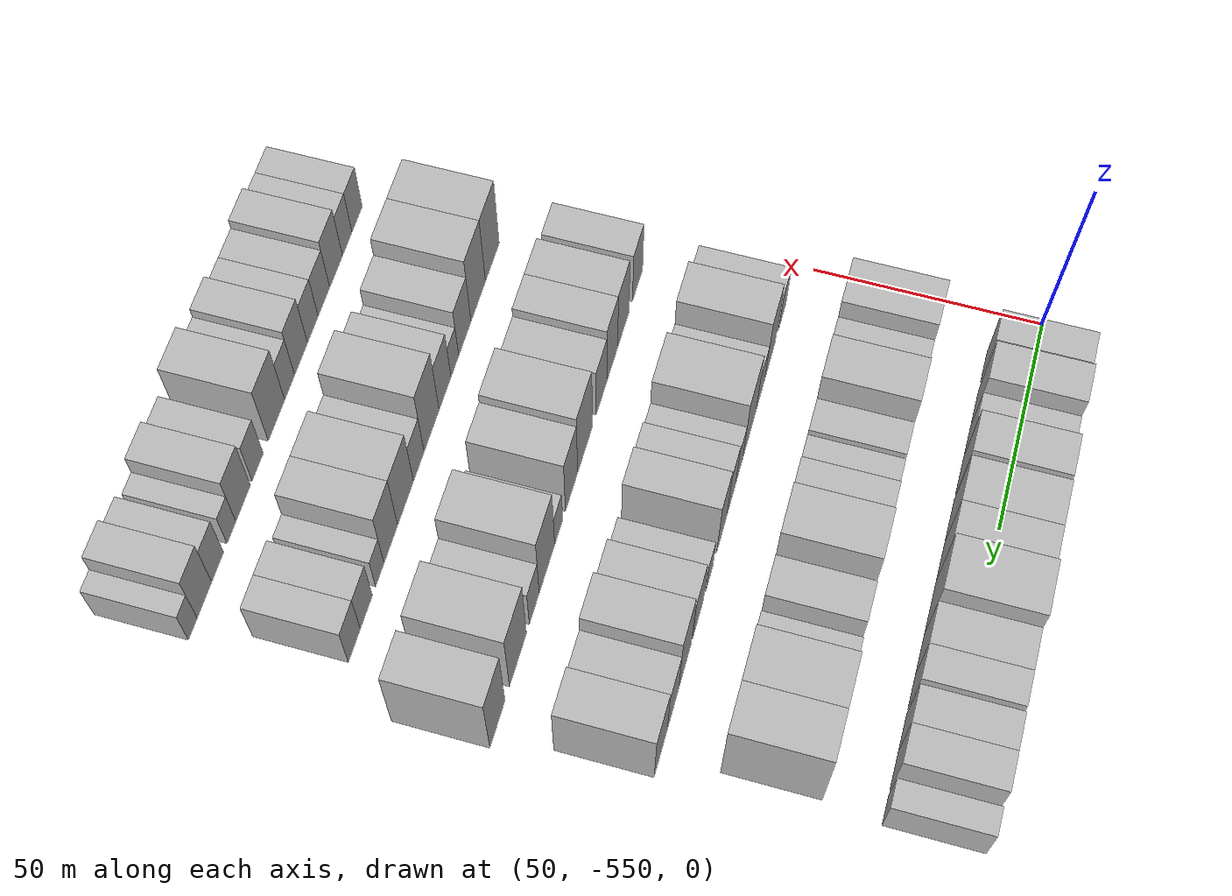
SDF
<sdf version="1.6">
 <world name="default">
  <model name="building_1">
   <static>1</static>
   <pose>50.0000 -536.3097 0 0.000000 0.000000 0.000000</pose>
   <link name="link">
    <pose>0 0 9.00 0 0 0</pose>
    <collision name="collision"><geometry><box><size>20.0000 7.3805 18.0000</size></box></geometry></collision>
    <visual name="visual">
     <cast_shadows>0</cast_shadows>
     <geometry><box><size>20.0000 7.3805 18.0000</size></box></geometry>
     <material>
      <script>
       <uri>model://HANNAS_wall/materials/scripts</uri>
       <uri>model://HANNAS_wall/materials/textures</uri>
       <name>vrc/HANNAS_wall</name>
      </script>
     </material>
    </visual>
   </link>
  </model>
  <model name="building_2">
   <static>1</static>
   <pose>50.0000 -526.1825 0 0.000000 0.000000 0.000000</pose>
   <link name="link">
    <pose>0 0 10.50 0 0 0</pose>
    <collision name="collision"><geometry><box><size>20.0000 8.8739 21.0000</size></box></geometry></collision>
    <visual name="visual">
     <cast_shadows>0</cast_shadows>
     <geometry><box><size>20.0000 8.8739 21.0000</size></box></geometry>
     <material>
      <script>
       <uri>model://HANNAS_wall/materials/scripts</uri>
       <uri>model://HANNAS_wall/materials/textures</uri>
       <name>vrc/HANNAS_wall</name>
      </script>
     </material>
    </visual>
   </link>
  </model>
  <model name="building_3">
   <static>1</static>
   <pose>50.0000 -518.0560 0 0.000000 0.000000 0.000000</pose>
   <link name="link">
    <pose>0 0 7.50 0 0 0</pose>
    <collision name="collision"><geometry><box><size>20.0000 7.3791 15.0000</size></box></geometry></collision>
    <visual name="visual">
     <cast_shadows>0</cast_shadows>
     <geometry><box><size>20.0000 7.3791 15.0000</size></box></geometry>
     <material>
      <script>
       <uri>model://HANNAS_wall/materials/scripts</uri>
       <uri>model://HANNAS_wall/materials/textures</uri>
       <name>vrc/HANNAS_wall</name>
      </script>
     </material>
    </visual>
   </link>
  </model>
  <model name="building_4">
   <static>1</static>
   <pose>50.0000 -509.7047 0 0.000000 0.000000 0.000000</pose>
   <link name="link">
    <pose>0 0 10.50 0 0 0</pose>
    <collision name="collision"><geometry><box><size>20.0000 9.3236 21.0000</size></box></geometry></collision>
    <visual name="visual">
     <cast_shadows>0</cast_shadows>
     <geometry><box><size>20.0000 9.3236 21.0000</size></box></geometry>
     <material>
      <script>
       <uri>model://HANNAS_wall/materials/scripts</uri>
       <uri>model://HANNAS_wall/materials/textures</uri>
       <name>vrc/HANNAS_wall</name>
      </script>
     </material>
    </visual>
   </link>
  </model>
  <model name="building_5">
   <static>1</static>
   <pose>50.0000 -499.0533 0 0.000000 0.000000 0.000000</pose>
   <link name="link">
    <pose>0 0 10.50 0 0 0</pose>
    <collision name="collision"><geometry><box><size>20.0000 9.9792 21.0000</size></box></geometry></collision>
    <visual name="visual">
     <cast_shadows>0</cast_shadows>
     <geometry><box><size>20.0000 9.9792 21.0000</size></box></geometry>
     <material>
      <script>
       <uri>model://HANNAS_wall/materials/scripts</uri>
       <uri>model://HANNAS_wall/materials/textures</uri>
       <name>vrc/HANNAS_wall</name>
      </script>
     </material>
    </visual>
   </link>
  </model>
  <model name="building_6">
   <static>1</static>
   <pose>50.0000 -489.7183 0 0.000000 0.000000 0.000000</pose>
   <link name="link">
    <pose>0 0 10.50 0 0 0</pose>
    <collision name="collision"><geometry><box><size>20.0000 8.6908 21.0000</size></box></geometry></collision>
    <visual name="visual">
     <cast_shadows>0</cast_shadows>
     <geometry><box><size>20.0000 8.6908 21.0000</size></box></geometry>
     <material>
      <script>
       <uri>model://HANNAS_wall/materials/scripts</uri>
       <uri>model://HANNAS_wall/materials/textures</uri>
       <name>vrc/HANNAS_wall</name>
      </script>
     </material>
    </visual>
   </link>
  </model>
  <model name="building_7">
   <static>1</static>
   <pose>50.0000 -479.4428 0 0.000000 0.000000 0.000000</pose>
   <link name="link">
    <pose>0 0 12.00 0 0 0</pose>
    <collision name="collision"><geometry><box><size>20.0000 11.8601 24.0000</size></box></geometry></collision>
    <visual name="visual">
     <cast_shadows>0</cast_shadows>
     <geometry><box><size>20.0000 11.8601 24.0000</size></box></geometry>
     <material>
      <script>
       <uri>model://HANNAS_wall/materials/scripts</uri>
       <uri>model://HANNAS_wall/materials/textures</uri>
       <name>vrc/HANNAS_wall</name>
      </script>
     </material>
    </visual>
   </link>
  </model>
  <model name="building_8">
   <static>1</static>
   <pose>50.0000 -469.0990 0 0.000000 0.000000 0.000000</pose>
   <link name="link">
    <pose>0 0 9.00 0 0 0</pose>
    <collision name="collision"><geometry><box><size>20.0000 8.8274 18.0000</size></box></geometry></collision>
    <visual name="visual">
     <cast_shadows>0</cast_shadows>
     <geometry><box><size>20.0000 8.8274 18.0000</size></box></geometry>
     <material>
      <script>
       <uri>model://HANNAS_wall/materials/scripts</uri>
       <uri>model://HANNAS_wall/materials/textures</uri>
       <name>vrc/HANNAS_wall</name>
      </script>
     </material>
    </visual>
   </link>
  </model>
  <model name="building_9">
   <static>1</static>
   <pose>50.0000 -460.9880 0 0.000000 0.000000 0.000000</pose>
   <link name="link">
    <pose>0 0 9.00 0 0 0</pose>
    <collision name="collision"><geometry><box><size>20.0000 7.3945 18.0000</size></box></geometry></collision>
    <visual name="visual">
     <cast_shadows>0</cast_shadows>
     <geometry><box><size>20.0000 7.3945 18.0000</size></box></geometry>
     <material>
      <script>
       <uri>model://HANNAS_wall/materials/scripts</uri>
       <uri>model://HANNAS_wall/materials/textures</uri>
       <name>vrc/HANNAS_wall</name>
      </script>
     </material>
    </visual>
   </link>
  </model>
  <model name="building_10">
   <static>1</static>
   <pose>50.0000 -452.3963 0 0.000000 0.000000 0.000000</pose>
   <link name="link">
    <pose>0 0 9.00 0 0 0</pose>
    <collision name="collision"><geometry><box><size>20.0000 7.7890 18.0000</size></box></geometry></collision>
    <visual name="visual">
     <cast_shadows>0</cast_shadows>
     <geometry><box><size>20.0000 7.7890 18.0000</size></box></geometry>
     <material>
      <script>
       <uri>model://HANNAS_wall/materials/scripts</uri>
       <uri>model://HANNAS_wall/materials/textures</uri>
       <name>vrc/HANNAS_wall</name>
      </script>
     </material>
    </visual>
   </link>
  </model>
  <model name="building_11">
   <static>1</static>
   <pose>50.0000 -444.4379 0 0.000000 0.000000 0.000000</pose>
   <link name="link">
    <pose>0 0 9.00 0 0 0</pose>
    <collision name="collision"><geometry><box><size>20.0000 8.1278 18.0000</size></box></geometry></collision>
    <visual name="visual">
     <cast_shadows>0</cast_shadows>
     <geometry><box><size>20.0000 8.1278 18.0000</size></box></geometry>
     <material>
      <script>
       <uri>model://HANNAS_wall/materials/scripts</uri>
       <uri>model://HANNAS_wall/materials/textures</uri>
       <name>vrc/HANNAS_wall</name>
      </script>
     </material>
    </visual>
   </link>
  </model>
  <model name="building_12">
   <static>1</static>
   <pose>50.0000 -436.4097 0 0.000000 0.000000 0.000000</pose>
   <link name="link">
    <pose>0 0 6.00 0 0 0</pose>
    <collision name="collision"><geometry><box><size>20.0000 5.9287 12.0000</size></box></geometry></collision>
    <visual name="visual">
     <cast_shadows>0</cast_shadows>
     <geometry><box><size>20.0000 5.9287 12.0000</size></box></geometry>
     <material>
      <script>
       <uri>model://HANNAS_wall/materials/scripts</uri>
       <uri>model://HANNAS_wall/materials/textures</uri>
       <name>vrc/HANNAS_wall</name>
      </script>
     </material>
    </visual>
   </link>
  </model>
  <model name="building_117">
   <static>1</static>
   <pose>82.0000 -534.5952 0 0.000000 0.000000 0.000000</pose>
   <link name="link">
    <pose>0 0 12.00 0 0 0</pose>
    <collision name="collision"><geometry><box><size>20.0000 10.8096 24.0000</size></box></geometry></collision>
    <visual name="visual">
     <cast_shadows>0</cast_shadows>
     <geometry><box><size>20.0000 10.8096 24.0000</size></box></geometry>
     <material>
      <script>
       <uri>model://HANNAS_wall/materials/scripts</uri>
       <uri>model://HANNAS_wall/materials/textures</uri>
       <name>vrc/HANNAS_wall</name>
      </script>
     </material>
    </visual>
   </link>
  </model>
  <model name="building_118">
   <static>1</static>
   <pose>82.0000 -525.2677 0 0.000000 0.000000 0.000000</pose>
   <link name="link">
    <pose>0 0 9.00 0 0 0</pose>
    <collision name="collision"><geometry><box><size>20.0000 7.8455 18.0000</size></box></geometry></collision>
    <visual name="visual">
     <cast_shadows>0</cast_shadows>
     <geometry><box><size>20.0000 7.8455 18.0000</size></box></geometry>
     <material>
      <script>
       <uri>model://HANNAS_wall/materials/scripts</uri>
       <uri>model://HANNAS_wall/materials/textures</uri>
       <name>vrc/HANNAS_wall</name>
      </script>
     </material>
    </visual>
   </link>
  </model>
  <model name="building_119">
   <static>1</static>
   <pose>82.0000 -516.3274 0 0.000000 0.000000 0.000000</pose>
   <link name="link">
    <pose>0 0 12.00 0 0 0</pose>
    <collision name="collision"><geometry><box><size>20.0000 10.0350 24.0000</size></box></geometry></collision>
    <visual name="visual">
     <cast_shadows>0</cast_shadows>
     <geometry><box><size>20.0000 10.0350 24.0000</size></box></geometry>
     <material>
      <script>
       <uri>model://HANNAS_wall/materials/scripts</uri>
       <uri>model://HANNAS_wall/materials/textures</uri>
       <name>vrc/HANNAS_wall</name>
      </script>
     </material>
    </visual>
   </link>
  </model>
  <model name="building_120">
   <static>1</static>
   <pose>82.0000 -507.5754 0 0.000000 0.000000 0.000000</pose>
   <link name="link">
    <pose>0 0 7.50 0 0 0</pose>
    <collision name="collision"><geometry><box><size>20.0000 7.4691 15.0000</size></box></geometry></collision>
    <visual name="visual">
     <cast_shadows>0</cast_shadows>
     <geometry><box><size>20.0000 7.4691 15.0000</size></box></geometry>
     <material>
      <script>
       <uri>model://HANNAS_wall/materials/scripts</uri>
       <uri>model://HANNAS_wall/materials/textures</uri>
       <name>vrc/HANNAS_wall</name>
      </script>
     </material>
    </visual>
   </link>
  </model>
  <model name="building_121">
   <static>1</static>
   <pose>82.0000 -499.5413 0 0.000000 0.000000 0.000000</pose>
   <link name="link">
    <pose>0 0 7.50 0 0 0</pose>
    <collision name="collision"><geometry><box><size>20.0000 6.5990 15.0000</size></box></geometry></collision>
    <visual name="visual">
     <cast_shadows>0</cast_shadows>
     <geometry><box><size>20.0000 6.5990 15.0000</size></box></geometry>
     <material>
      <script>
       <uri>model://HANNAS_wall/materials/scripts</uri>
       <uri>model://HANNAS_wall/materials/textures</uri>
       <name>vrc/HANNAS_wall</name>
      </script>
     </material>
    </visual>
   </link>
  </model>
  <model name="building_122">
   <static>1</static>
   <pose>82.0000 -491.8458 0 0.000000 0.000000 0.000000</pose>
   <link name="link">
    <pose>0 0 9.00 0 0 0</pose>
    <collision name="collision"><geometry><box><size>20.0000 8.7920 18.0000</size></box></geometry></collision>
    <visual name="visual">
     <cast_shadows>0</cast_shadows>
     <geometry><box><size>20.0000 8.7920 18.0000</size></box></geometry>
     <material>
      <script>
       <uri>model://HANNAS_wall/materials/scripts</uri>
       <uri>model://HANNAS_wall/materials/textures</uri>
       <name>vrc/HANNAS_wall</name>
      </script>
     </material>
    </visual>
   </link>
  </model>
  <model name="building_123">
   <static>1</static>
   <pose>82.0000 -481.9068 0 0.000000 0.000000 0.000000</pose>
   <link name="link">
    <pose>0 0 12.00 0 0 0</pose>
    <collision name="collision"><geometry><box><size>20.0000 11.0861 24.0000</size></box></geometry></collision>
    <visual name="visual">
     <cast_shadows>0</cast_shadows>
     <geometry><box><size>20.0000 11.0861 24.0000</size></box></geometry>
     <material>
      <script>
       <uri>model://HANNAS_wall/materials/scripts</uri>
       <uri>model://HANNAS_wall/materials/textures</uri>
       <name>vrc/HANNAS_wall</name>
      </script>
     </material>
    </visual>
   </link>
  </model>
  <model name="building_124">
   <static>1</static>
   <pose>82.0000 -470.0114 0 0.000000 0.000000 0.000000</pose>
   <link name="link">
    <pose>0 0 9.00 0 0 0</pose>
    <collision name="collision"><geometry><box><size>20.0000 8.7047 18.0000</size></box></geometry></collision>
    <visual name="visual">
     <cast_shadows>0</cast_shadows>
     <geometry><box><size>20.0000 8.7047 18.0000</size></box></geometry>
     <material>
      <script>
       <uri>model://HANNAS_wall/materials/scripts</uri>
       <uri>model://HANNAS_wall/materials/textures</uri>
       <name>vrc/HANNAS_wall</name>
      </script>
     </material>
    </visual>
   </link>
  </model>
  <model name="building_125">
   <static>1</static>
   <pose>82.0000 -460.4002 0 0.000000 0.000000 0.000000</pose>
   <link name="link">
    <pose>0 0 7.50 0 0 0</pose>
    <collision name="collision"><geometry><box><size>20.0000 6.5177 15.0000</size></box></geometry></collision>
    <visual name="visual">
     <cast_shadows>0</cast_shadows>
     <geometry><box><size>20.0000 6.5177 15.0000</size></box></geometry>
     <material>
      <script>
       <uri>model://HANNAS_wall/materials/scripts</uri>
       <uri>model://HANNAS_wall/materials/textures</uri>
       <name>vrc/HANNAS_wall</name>
      </script>
     </material>
    </visual>
   </link>
  </model>
  <model name="building_126">
   <static>1</static>
   <pose>82.0000 -451.4658 0 0.000000 0.000000 0.000000</pose>
   <link name="link">
    <pose>0 0 12.00 0 0 0</pose>
    <collision name="collision"><geometry><box><size>20.0000 11.3511 24.0000</size></box></geometry></collision>
    <visual name="visual">
     <cast_shadows>0</cast_shadows>
     <geometry><box><size>20.0000 11.3511 24.0000</size></box></geometry>
     <material>
      <script>
       <uri>model://HANNAS_wall/materials/scripts</uri>
       <uri>model://HANNAS_wall/materials/textures</uri>
       <name>vrc/HANNAS_wall</name>
      </script>
     </material>
    </visual>
   </link>
  </model>
  <model name="building_127">
   <static>1</static>
   <pose>82.0000 -440.4803 0 0.000000 0.000000 0.000000</pose>
   <link name="link">
    <pose>0 0 12.00 0 0 0</pose>
    <collision name="collision"><geometry><box><size>20.0000 10.6199 24.0000</size></box></geometry></collision>
    <visual name="visual">
     <cast_shadows>0</cast_shadows>
     <geometry><box><size>20.0000 10.6199 24.0000</size></box></geometry>
     <material>
      <script>
       <uri>model://HANNAS_wall/materials/scripts</uri>
       <uri>model://HANNAS_wall/materials/textures</uri>
       <name>vrc/HANNAS_wall</name>
      </script>
     </material>
    </visual>
   </link>
  </model>
  <model name="building_237">
   <static>1</static>
   <pose>114.0000 -536.5072 0 0.000000 0.000000 0.000000</pose>
   <link name="link">
    <pose>0 0 7.50 0 0 0</pose>
    <collision name="collision"><geometry><box><size>20.0000 6.9856 15.0000</size></box></geometry></collision>
    <visual name="visual">
     <cast_shadows>0</cast_shadows>
     <geometry><box><size>20.0000 6.9856 15.0000</size></box></geometry>
     <material>
      <script>
       <uri>model://HANNAS_wall/materials/scripts</uri>
       <uri>model://HANNAS_wall/materials/textures</uri>
       <name>vrc/HANNAS_wall</name>
      </script>
     </material>
    </visual>
   </link>
  </model>
  <model name="building_238">
   <static>1</static>
   <pose>114.0000 -525.1246 0 0.000000 0.000000 0.000000</pose>
   <link name="link">
    <pose>0 0 12.00 0 0 0</pose>
    <collision name="collision"><geometry><box><size>20.0000 9.7797 24.0000</size></box></geometry></collision>
    <visual name="visual">
     <cast_shadows>0</cast_shadows>
     <geometry><box><size>20.0000 9.7797 24.0000</size></box></geometry>
     <material>
      <script>
       <uri>model://HANNAS_wall/materials/scripts</uri>
       <uri>model://HANNAS_wall/materials/textures</uri>
       <name>vrc/HANNAS_wall</name>
      </script>
     </material>
    </visual>
   </link>
  </model>
  <model name="building_239">
   <static>1</static>
   <pose>114.0000 -516.5042 0 0.000000 0.000000 0.000000</pose>
   <link name="link">
    <pose>0 0 7.50 0 0 0</pose>
    <collision name="collision"><geometry><box><size>20.0000 7.4611 15.0000</size></box></geometry></collision>
    <visual name="visual">
     <cast_shadows>0</cast_shadows>
     <geometry><box><size>20.0000 7.4611 15.0000</size></box></geometry>
     <material>
      <script>
       <uri>model://HANNAS_wall/materials/scripts</uri>
       <uri>model://HANNAS_wall/materials/textures</uri>
       <name>vrc/HANNAS_wall</name>
      </script>
     </material>
    </visual>
   </link>
  </model>
  <model name="building_240">
   <static>1</static>
   <pose>114.0000 -506.9542 0 0.000000 0.000000 0.000000</pose>
   <link name="link">
    <pose>0 0 12.00 0 0 0</pose>
    <collision name="collision"><geometry><box><size>20.0000 11.6388 24.0000</size></box></geometry></collision>
    <visual name="visual">
     <cast_shadows>0</cast_shadows>
     <geometry><box><size>20.0000 11.6388 24.0000</size></box></geometry>
     <material>
      <script>
       <uri>model://HANNAS_wall/materials/scripts</uri>
       <uri>model://HANNAS_wall/materials/textures</uri>
       <name>vrc/HANNAS_wall</name>
      </script>
     </material>
    </visual>
   </link>
  </model>
  <model name="building_241">
   <static>1</static>
   <pose>114.0000 -498.1018 0 0.000000 0.000000 0.000000</pose>
   <link name="link">
    <pose>0 0 7.50 0 0 0</pose>
    <collision name="collision"><geometry><box><size>20.0000 6.0660 15.0000</size></box></geometry></collision>
    <visual name="visual">
     <cast_shadows>0</cast_shadows>
     <geometry><box><size>20.0000 6.0660 15.0000</size></box></geometry>
     <material>
      <script>
       <uri>model://HANNAS_wall/materials/scripts</uri>
       <uri>model://HANNAS_wall/materials/textures</uri>
       <name>vrc/HANNAS_wall</name>
      </script>
     </material>
    </visual>
   </link>
  </model>
  <model name="building_242">
   <static>1</static>
   <pose>114.0000 -491.4581 0 0.000000 0.000000 0.000000</pose>
   <link name="link">
    <pose>0 0 9.00 0 0 0</pose>
    <collision name="collision"><geometry><box><size>20.0000 7.2216 18.0000</size></box></geometry></collision>
    <visual name="visual">
     <cast_shadows>0</cast_shadows>
     <geometry><box><size>20.0000 7.2216 18.0000</size></box></geometry>
     <material>
      <script>
       <uri>model://HANNAS_wall/materials/scripts</uri>
       <uri>model://HANNAS_wall/materials/textures</uri>
       <name>vrc/HANNAS_wall</name>
      </script>
     </material>
    </visual>
   </link>
  </model>
  <model name="building_243">
   <static>1</static>
   <pose>114.0000 -483.6099 0 0.000000 0.000000 0.000000</pose>
   <link name="link">
    <pose>0 0 10.50 0 0 0</pose>
    <collision name="collision"><geometry><box><size>20.0000 8.4747 21.0000</size></box></geometry></collision>
    <visual name="visual">
     <cast_shadows>0</cast_shadows>
     <geometry><box><size>20.0000 8.4747 21.0000</size></box></geometry>
     <material>
      <script>
       <uri>model://HANNAS_wall/materials/scripts</uri>
       <uri>model://HANNAS_wall/materials/textures</uri>
       <name>vrc/HANNAS_wall</name>
      </script>
     </material>
    </visual>
   </link>
  </model>
  <model name="building_244">
   <static>1</static>
   <pose>114.0000 -473.5546 0 0.000000 0.000000 0.000000</pose>
   <link name="link">
    <pose>0 0 6.00 0 0 0</pose>
    <collision name="collision"><geometry><box><size>20.0000 5.6358 12.0000</size></box></geometry></collision>
    <visual name="visual">
     <cast_shadows>0</cast_shadows>
     <geometry><box><size>20.0000 5.6358 12.0000</size></box></geometry>
     <material>
      <script>
       <uri>model://HANNAS_wall/materials/scripts</uri>
       <uri>model://HANNAS_wall/materials/textures</uri>
       <name>vrc/HANNAS_wall</name>
      </script>
     </material>
    </visual>
   </link>
  </model>
  <model name="building_245">
   <static>1</static>
   <pose>114.0000 -464.3311 0 0.000000 0.000000 0.000000</pose>
   <link name="link">
    <pose>0 0 9.00 0 0 0</pose>
    <collision name="collision"><geometry><box><size>20.0000 8.8113 18.0000</size></box></geometry></collision>
    <visual name="visual">
     <cast_shadows>0</cast_shadows>
     <geometry><box><size>20.0000 8.8113 18.0000</size></box></geometry>
     <material>
      <script>
       <uri>model://HANNAS_wall/materials/scripts</uri>
       <uri>model://HANNAS_wall/materials/textures</uri>
       <name>vrc/HANNAS_wall</name>
      </script>
     </material>
    </visual>
   </link>
  </model>
  <model name="building_246">
   <static>1</static>
   <pose>114.0000 -454.1131 0 0.000000 0.000000 0.000000</pose>
   <link name="link">
    <pose>0 0 12.00 0 0 0</pose>
    <collision name="collision"><geometry><box><size>20.0000 9.6247 24.0000</size></box></geometry></collision>
    <visual name="visual">
     <cast_shadows>0</cast_shadows>
     <geometry><box><size>20.0000 9.6247 24.0000</size></box></geometry>
     <material>
      <script>
       <uri>model://HANNAS_wall/materials/scripts</uri>
       <uri>model://HANNAS_wall/materials/textures</uri>
       <name>vrc/HANNAS_wall</name>
      </script>
     </material>
    </visual>
   </link>
  </model>
  <model name="building_247">
   <static>1</static>
   <pose>114.0000 -444.9282 0 0.000000 0.000000 0.000000</pose>
   <link name="link">
    <pose>0 0 9.00 0 0 0</pose>
    <collision name="collision"><geometry><box><size>20.0000 8.7451 18.0000</size></box></geometry></collision>
    <visual name="visual">
     <cast_shadows>0</cast_shadows>
     <geometry><box><size>20.0000 8.7451 18.0000</size></box></geometry>
     <material>
      <script>
       <uri>model://HANNAS_wall/materials/scripts</uri>
       <uri>model://HANNAS_wall/materials/textures</uri>
       <name>vrc/HANNAS_wall</name>
      </script>
     </material>
    </visual>
   </link>
  </model>
  <model name="building_248">
   <static>1</static>
   <pose>114.0000 -435.6651 0 0.000000 0.000000 0.000000</pose>
   <link name="link">
    <pose>0 0 10.50 0 0 0</pose>
    <collision name="collision"><geometry><box><size>20.0000 9.7810 21.0000</size></box></geometry></collision>
    <visual name="visual">
     <cast_shadows>0</cast_shadows>
     <geometry><box><size>20.0000 9.7810 21.0000</size></box></geometry>
     <material>
      <script>
       <uri>model://HANNAS_wall/materials/scripts</uri>
       <uri>model://HANNAS_wall/materials/textures</uri>
       <name>vrc/HANNAS_wall</name>
      </script>
     </material>
    </visual>
   </link>
  </model>
  <model name="building_358">
   <static>1</static>
   <pose>146.0000 -535.8744 0 0.000000 0.000000 0.000000</pose>
   <link name="link">
    <pose>0 0 9.00 0 0 0</pose>
    <collision name="collision"><geometry><box><size>20.0000 8.2513 18.0000</size></box></geometry></collision>
    <visual name="visual">
     <cast_shadows>0</cast_shadows>
     <geometry><box><size>20.0000 8.2513 18.0000</size></box></geometry>
     <material>
      <script>
       <uri>model://HANNAS_wall/materials/scripts</uri>
       <uri>model://HANNAS_wall/materials/textures</uri>
       <name>vrc/HANNAS_wall</name>
      </script>
     </material>
    </visual>
   </link>
  </model>
  <model name="building_359">
   <static>1</static>
   <pose>146.0000 -524.2997 0 0.000000 0.000000 0.000000</pose>
   <link name="link">
    <pose>0 0 10.50 0 0 0</pose>
    <collision name="collision"><geometry><box><size>20.0000 8.8981 21.0000</size></box></geometry></collision>
    <visual name="visual">
     <cast_shadows>0</cast_shadows>
     <geometry><box><size>20.0000 8.8981 21.0000</size></box></geometry>
     <material>
      <script>
       <uri>model://HANNAS_wall/materials/scripts</uri>
       <uri>model://HANNAS_wall/materials/textures</uri>
       <name>vrc/HANNAS_wall</name>
      </script>
     </material>
    </visual>
   </link>
  </model>
  <model name="building_360">
   <static>1</static>
   <pose>146.0000 -515.5537 0 0.000000 0.000000 0.000000</pose>
   <link name="link">
    <pose>0 0 10.50 0 0 0</pose>
    <collision name="collision"><geometry><box><size>20.0000 8.5938 21.0000</size></box></geometry></collision>
    <visual name="visual">
     <cast_shadows>0</cast_shadows>
     <geometry><box><size>20.0000 8.5938 21.0000</size></box></geometry>
     <material>
      <script>
       <uri>model://HANNAS_wall/materials/scripts</uri>
       <uri>model://HANNAS_wall/materials/textures</uri>
       <name>vrc/HANNAS_wall</name>
      </script>
     </material>
    </visual>
   </link>
  </model>
  <model name="building_361">
   <static>1</static>
   <pose>146.0000 -507.1553 0 0.000000 0.000000 0.000000</pose>
   <link name="link">
    <pose>0 0 9.00 0 0 0</pose>
    <collision name="collision"><geometry><box><size>20.0000 8.2030 18.0000</size></box></geometry></collision>
    <visual name="visual">
     <cast_shadows>0</cast_shadows>
     <geometry><box><size>20.0000 8.2030 18.0000</size></box></geometry>
     <material>
      <script>
       <uri>model://HANNAS_wall/materials/scripts</uri>
       <uri>model://HANNAS_wall/materials/textures</uri>
       <name>vrc/HANNAS_wall</name>
      </script>
     </material>
    </visual>
   </link>
  </model>
  <model name="building_362">
   <static>1</static>
   <pose>146.0000 -494.5252 0 0.000000 0.000000 0.000000</pose>
   <link name="link">
    <pose>0 0 12.00 0 0 0</pose>
    <collision name="collision"><geometry><box><size>20.0000 11.0574 24.0000</size></box></geometry></collision>
    <visual name="visual">
     <cast_shadows>0</cast_shadows>
     <geometry><box><size>20.0000 11.0574 24.0000</size></box></geometry>
     <material>
      <script>
       <uri>model://HANNAS_wall/materials/scripts</uri>
       <uri>model://HANNAS_wall/materials/textures</uri>
       <name>vrc/HANNAS_wall</name>
      </script>
     </material>
    </visual>
   </link>
  </model>
  <model name="building_363">
   <static>1</static>
   <pose>146.0000 -484.4796 0 0.000000 0.000000 0.000000</pose>
   <link name="link">
    <pose>0 0 10.50 0 0 0</pose>
    <collision name="collision"><geometry><box><size>20.0000 9.0338 21.0000</size></box></geometry></collision>
    <visual name="visual">
     <cast_shadows>0</cast_shadows>
     <geometry><box><size>20.0000 9.0338 21.0000</size></box></geometry>
     <material>
      <script>
       <uri>model://HANNAS_wall/materials/scripts</uri>
       <uri>model://HANNAS_wall/materials/textures</uri>
       <name>vrc/HANNAS_wall</name>
      </script>
     </material>
    </visual>
   </link>
  </model>
  <model name="building_364">
   <static>1</static>
   <pose>146.0000 -475.0717 0 0.000000 0.000000 0.000000</pose>
   <link name="link">
    <pose>0 0 6.00 0 0 0</pose>
    <collision name="collision"><geometry><box><size>20.0000 5.7820 12.0000</size></box></geometry></collision>
    <visual name="visual">
     <cast_shadows>0</cast_shadows>
     <geometry><box><size>20.0000 5.7820 12.0000</size></box></geometry>
     <material>
      <script>
       <uri>model://HANNAS_wall/materials/scripts</uri>
       <uri>model://HANNAS_wall/materials/textures</uri>
       <name>vrc/HANNAS_wall</name>
      </script>
     </material>
    </visual>
   </link>
  </model>
  <model name="building_365">
   <static>1</static>
   <pose>146.0000 -466.7015 0 0.000000 0.000000 0.000000</pose>
   <link name="link">
    <pose>0 0 12.00 0 0 0</pose>
    <collision name="collision"><geometry><box><size>20.0000 10.9582 24.0000</size></box></geometry></collision>
    <visual name="visual">
     <cast_shadows>0</cast_shadows>
     <geometry><box><size>20.0000 10.9582 24.0000</size></box></geometry>
     <material>
      <script>
       <uri>model://HANNAS_wall/materials/scripts</uri>
       <uri>model://HANNAS_wall/materials/textures</uri>
       <name>vrc/HANNAS_wall</name>
      </script>
     </material>
    </visual>
   </link>
  </model>
  <model name="building_366">
   <static>1</static>
   <pose>146.0000 -457.7693 0 0.000000 0.000000 0.000000</pose>
   <link name="link">
    <pose>0 0 7.50 0 0 0</pose>
    <collision name="collision"><geometry><box><size>20.0000 6.9061 15.0000</size></box></geometry></collision>
    <visual name="visual">
     <cast_shadows>0</cast_shadows>
     <geometry><box><size>20.0000 6.9061 15.0000</size></box></geometry>
     <material>
      <script>
       <uri>model://HANNAS_wall/materials/scripts</uri>
       <uri>model://HANNAS_wall/materials/textures</uri>
       <name>vrc/HANNAS_wall</name>
      </script>
     </material>
    </visual>
   </link>
  </model>
  <model name="building_367">
   <static>1</static>
   <pose>146.0000 -446.5526 0 0.000000 0.000000 0.000000</pose>
   <link name="link">
    <pose>0 0 12.00 0 0 0</pose>
    <collision name="collision"><geometry><box><size>20.0000 11.5273 24.0000</size></box></geometry></collision>
    <visual name="visual">
     <cast_shadows>0</cast_shadows>
     <geometry><box><size>20.0000 11.5273 24.0000</size></box></geometry>
     <material>
      <script>
       <uri>model://HANNAS_wall/materials/scripts</uri>
       <uri>model://HANNAS_wall/materials/textures</uri>
       <name>vrc/HANNAS_wall</name>
      </script>
     </material>
    </visual>
   </link>
  </model>
  <model name="building_368">
   <static>1</static>
   <pose>146.0000 -432.8140 0 0.000000 0.000000 0.000000</pose>
   <link name="link">
    <pose>0 0 12.00 0 0 0</pose>
    <collision name="collision"><geometry><box><size>20.0000 9.9500 24.0000</size></box></geometry></collision>
    <visual name="visual">
     <cast_shadows>0</cast_shadows>
     <geometry><box><size>20.0000 9.9500 24.0000</size></box></geometry>
     <material>
      <script>
       <uri>model://HANNAS_wall/materials/scripts</uri>
       <uri>model://HANNAS_wall/materials/textures</uri>
       <name>vrc/HANNAS_wall</name>
      </script>
     </material>
    </visual>
   </link>
  </model>
  <model name="building_475">
   <static>1</static>
   <pose>178.0000 -532.9279 0 0.000000 0.000000 0.000000</pose>
   <link name="link">
    <pose>0 0 12.00 0 0 0</pose>
    <collision name="collision"><geometry><box><size>20.0000 10.1442 24.0000</size></box></geometry></collision>
    <visual name="visual">
     <cast_shadows>0</cast_shadows>
     <geometry><box><size>20.0000 10.1442 24.0000</size></box></geometry>
     <material>
      <script>
       <uri>model://HANNAS_wall/materials/scripts</uri>
       <uri>model://HANNAS_wall/materials/textures</uri>
       <name>vrc/HANNAS_wall</name>
      </script>
     </material>
    </visual>
   </link>
  </model>
  <model name="building_476">
   <static>1</static>
   <pose>178.0000 -522.6559 0 0.000000 0.000000 0.000000</pose>
   <link name="link">
    <pose>0 0 12.00 0 0 0</pose>
    <collision name="collision"><geometry><box><size>20.0000 10.3999 24.0000</size></box></geometry></collision>
    <visual name="visual">
     <cast_shadows>0</cast_shadows>
     <geometry><box><size>20.0000 10.3999 24.0000</size></box></geometry>
     <material>
      <script>
       <uri>model://HANNAS_wall/materials/scripts</uri>
       <uri>model://HANNAS_wall/materials/textures</uri>
       <name>vrc/HANNAS_wall</name>
      </script>
     </material>
    </visual>
   </link>
  </model>
  <model name="building_477">
   <static>1</static>
   <pose>178.0000 -513.0959 0 0.000000 0.000000 0.000000</pose>
   <link name="link">
    <pose>0 0 9.00 0 0 0</pose>
    <collision name="collision"><geometry><box><size>20.0000 8.7201 18.0000</size></box></geometry></collision>
    <visual name="visual">
     <cast_shadows>0</cast_shadows>
     <geometry><box><size>20.0000 8.7201 18.0000</size></box></geometry>
     <material>
      <script>
       <uri>model://HANNAS_wall/materials/scripts</uri>
       <uri>model://HANNAS_wall/materials/textures</uri>
       <name>vrc/HANNAS_wall</name>
      </script>
     </material>
    </visual>
   </link>
  </model>
  <model name="building_478">
   <static>1</static>
   <pose>178.0000 -506.0615 0 0.000000 0.000000 0.000000</pose>
   <link name="link">
    <pose>0 0 6.00 0 0 0</pose>
    <collision name="collision"><geometry><box><size>20.0000 5.3487 12.0000</size></box></geometry></collision>
    <visual name="visual">
     <cast_shadows>0</cast_shadows>
     <geometry><box><size>20.0000 5.3487 12.0000</size></box></geometry>
     <material>
      <script>
       <uri>model://HANNAS_wall/materials/scripts</uri>
       <uri>model://HANNAS_wall/materials/textures</uri>
       <name>vrc/HANNAS_wall</name>
      </script>
     </material>
    </visual>
   </link>
  </model>
  <model name="building_479">
   <static>1</static>
   <pose>178.0000 -499.3165 0 0.000000 0.000000 0.000000</pose>
   <link name="link">
    <pose>0 0 9.00 0 0 0</pose>
    <collision name="collision"><geometry><box><size>20.0000 8.1414 18.0000</size></box></geometry></collision>
    <visual name="visual">
     <cast_shadows>0</cast_shadows>
     <geometry><box><size>20.0000 8.1414 18.0000</size></box></geometry>
     <material>
      <script>
       <uri>model://HANNAS_wall/materials/scripts</uri>
       <uri>model://HANNAS_wall/materials/textures</uri>
       <name>vrc/HANNAS_wall</name>
      </script>
     </material>
    </visual>
   </link>
  </model>
  <model name="building_480">
   <static>1</static>
   <pose>178.0000 -490.1400 0 0.000000 0.000000 0.000000</pose>
   <link name="link">
    <pose>0 0 12.00 0 0 0</pose>
    <collision name="collision"><geometry><box><size>20.0000 10.2116 24.0000</size></box></geometry></collision>
    <visual name="visual">
     <cast_shadows>0</cast_shadows>
     <geometry><box><size>20.0000 10.2116 24.0000</size></box></geometry>
     <material>
      <script>
       <uri>model://HANNAS_wall/materials/scripts</uri>
       <uri>model://HANNAS_wall/materials/textures</uri>
       <name>vrc/HANNAS_wall</name>
      </script>
     </material>
    </visual>
   </link>
  </model>
  <model name="building_481">
   <static>1</static>
   <pose>178.0000 -481.5107 0 0.000000 0.000000 0.000000</pose>
   <link name="link">
    <pose>0 0 7.50 0 0 0</pose>
    <collision name="collision"><geometry><box><size>20.0000 7.0468 15.0000</size></box></geometry></collision>
    <visual name="visual">
     <cast_shadows>0</cast_shadows>
     <geometry><box><size>20.0000 7.0468 15.0000</size></box></geometry>
     <material>
      <script>
       <uri>model://HANNAS_wall/materials/scripts</uri>
       <uri>model://HANNAS_wall/materials/textures</uri>
       <name>vrc/HANNAS_wall</name>
      </script>
     </material>
    </visual>
   </link>
  </model>
  <model name="building_482">
   <static>1</static>
   <pose>178.0000 -472.8532 0 0.000000 0.000000 0.000000</pose>
   <link name="link">
    <pose>0 0 10.50 0 0 0</pose>
    <collision name="collision"><geometry><box><size>20.0000 10.2682 21.0000</size></box></geometry></collision>
    <visual name="visual">
     <cast_shadows>0</cast_shadows>
     <geometry><box><size>20.0000 10.2682 21.0000</size></box></geometry>
     <material>
      <script>
       <uri>model://HANNAS_wall/materials/scripts</uri>
       <uri>model://HANNAS_wall/materials/textures</uri>
       <name>vrc/HANNAS_wall</name>
      </script>
     </material>
    </visual>
   </link>
  </model>
  <model name="building_483">
   <static>1</static>
   <pose>178.0000 -463.3601 0 0.000000 0.000000 0.000000</pose>
   <link name="link">
    <pose>0 0 10.50 0 0 0</pose>
    <collision name="collision"><geometry><box><size>20.0000 8.7179 21.0000</size></box></geometry></collision>
    <visual name="visual">
     <cast_shadows>0</cast_shadows>
     <geometry><box><size>20.0000 8.7179 21.0000</size></box></geometry>
     <material>
      <script>
       <uri>model://HANNAS_wall/materials/scripts</uri>
       <uri>model://HANNAS_wall/materials/textures</uri>
       <name>vrc/HANNAS_wall</name>
      </script>
     </material>
    </visual>
   </link>
  </model>
  <model name="building_484">
   <static>1</static>
   <pose>178.0000 -456.3616 0 0.000000 0.000000 0.000000</pose>
   <link name="link">
    <pose>0 0 6.00 0 0 0</pose>
    <collision name="collision"><geometry><box><size>20.0000 5.2791 12.0000</size></box></geometry></collision>
    <visual name="visual">
     <cast_shadows>0</cast_shadows>
     <geometry><box><size>20.0000 5.2791 12.0000</size></box></geometry>
     <material>
      <script>
       <uri>model://HANNAS_wall/materials/scripts</uri>
       <uri>model://HANNAS_wall/materials/textures</uri>
       <name>vrc/HANNAS_wall</name>
      </script>
     </material>
    </visual>
   </link>
  </model>
  <model name="building_485">
   <static>1</static>
   <pose>178.0000 -448.0006 0 0.000000 0.000000 0.000000</pose>
   <link name="link">
    <pose>0 0 7.50 0 0 0</pose>
    <collision name="collision"><geometry><box><size>20.0000 7.4429 15.0000</size></box></geometry></collision>
    <visual name="visual">
     <cast_shadows>0</cast_shadows>
     <geometry><box><size>20.0000 7.4429 15.0000</size></box></geometry>
     <material>
      <script>
       <uri>model://HANNAS_wall/materials/scripts</uri>
       <uri>model://HANNAS_wall/materials/textures</uri>
       <name>vrc/HANNAS_wall</name>
      </script>
     </material>
    </visual>
   </link>
  </model>
  <model name="building_486">
   <static>1</static>
   <pose>178.0000 -440.6449 0 0.000000 0.000000 0.000000</pose>
   <link name="link">
    <pose>0 0 7.50 0 0 0</pose>
    <collision name="collision"><geometry><box><size>20.0000 7.2684 15.0000</size></box></geometry></collision>
    <visual name="visual">
     <cast_shadows>0</cast_shadows>
     <geometry><box><size>20.0000 7.2684 15.0000</size></box></geometry>
     <material>
      <script>
       <uri>model://HANNAS_wall/materials/scripts</uri>
       <uri>model://HANNAS_wall/materials/textures</uri>
       <name>vrc/HANNAS_wall</name>
      </script>
     </material>
    </visual>
   </link>
  </model>
  <model name="building_600">
   <static>1</static>
   <pose>210.0000 -535.4989 0 0.000000 0.000000 0.000000</pose>
   <link name="link">
    <pose>0 0 7.50 0 0 0</pose>
    <collision name="collision"><geometry><box><size>20.0000 7.0021 15.0000</size></box></geometry></collision>
    <visual name="visual">
     <cast_shadows>0</cast_shadows>
     <geometry><box><size>20.0000 7.0021 15.0000</size></box></geometry>
     <material>
      <script>
       <uri>model://HANNAS_wall/materials/scripts</uri>
       <uri>model://HANNAS_wall/materials/textures</uri>
       <name>vrc/HANNAS_wall</name>
      </script>
     </material>
    </visual>
   </link>
  </model>
  <model name="building_601">
   <static>1</static>
   <pose>210.0000 -528.8451 0 0.000000 0.000000 0.000000</pose>
   <link name="link">
    <pose>0 0 7.50 0 0 0</pose>
    <collision name="collision"><geometry><box><size>20.0000 6.3055 15.0000</size></box></geometry></collision>
    <visual name="visual">
     <cast_shadows>0</cast_shadows>
     <geometry><box><size>20.0000 6.3055 15.0000</size></box></geometry>
     <material>
      <script>
       <uri>model://HANNAS_wall/materials/scripts</uri>
       <uri>model://HANNAS_wall/materials/textures</uri>
       <name>vrc/HANNAS_wall</name>
      </script>
     </material>
    </visual>
   </link>
  </model>
  <model name="building_602">
   <static>1</static>
   <pose>210.0000 -521.4926 0 0.000000 0.000000 0.000000</pose>
   <link name="link">
    <pose>0 0 9.00 0 0 0</pose>
    <collision name="collision"><geometry><box><size>20.0000 8.3996 18.0000</size></box></geometry></collision>
    <visual name="visual">
     <cast_shadows>0</cast_shadows>
     <geometry><box><size>20.0000 8.3996 18.0000</size></box></geometry>
     <material>
      <script>
       <uri>model://HANNAS_wall/materials/scripts</uri>
       <uri>model://HANNAS_wall/materials/textures</uri>
       <name>vrc/HANNAS_wall</name>
      </script>
     </material>
    </visual>
   </link>
  </model>
  <model name="building_603">
   <static>1</static>
   <pose>210.0000 -513.5702 0 0.000000 0.000000 0.000000</pose>
   <link name="link">
    <pose>0 0 7.50 0 0 0</pose>
    <collision name="collision"><geometry><box><size>20.0000 7.4451 15.0000</size></box></geometry></collision>
    <visual name="visual">
     <cast_shadows>0</cast_shadows>
     <geometry><box><size>20.0000 7.4451 15.0000</size></box></geometry>
     <material>
      <script>
       <uri>model://HANNAS_wall/materials/scripts</uri>
       <uri>model://HANNAS_wall/materials/textures</uri>
       <name>vrc/HANNAS_wall</name>
      </script>
     </material>
    </visual>
   </link>
  </model>
  <model name="building_604">
   <static>1</static>
   <pose>210.0000 -506.4334 0 0.000000 0.000000 0.000000</pose>
   <link name="link">
    <pose>0 0 7.50 0 0 0</pose>
    <collision name="collision"><geometry><box><size>20.0000 6.8286 15.0000</size></box></geometry></collision>
    <visual name="visual">
     <cast_shadows>0</cast_shadows>
     <geometry><box><size>20.0000 6.8286 15.0000</size></box></geometry>
     <material>
      <script>
       <uri>model://HANNAS_wall/materials/scripts</uri>
       <uri>model://HANNAS_wall/materials/textures</uri>
       <name>vrc/HANNAS_wall</name>
      </script>
     </material>
    </visual>
   </link>
  </model>
  <model name="building_605">
   <static>1</static>
   <pose>210.0000 -498.9559 0 0.000000 0.000000 0.000000</pose>
   <link name="link">
    <pose>0 0 9.00 0 0 0</pose>
    <collision name="collision"><geometry><box><size>20.0000 8.1265 18.0000</size></box></geometry></collision>
    <visual name="visual">
     <cast_shadows>0</cast_shadows>
     <geometry><box><size>20.0000 8.1265 18.0000</size></box></geometry>
     <material>
      <script>
       <uri>model://HANNAS_wall/materials/scripts</uri>
       <uri>model://HANNAS_wall/materials/textures</uri>
       <name>vrc/HANNAS_wall</name>
      </script>
     </material>
    </visual>
   </link>
  </model>
  <model name="building_606">
   <static>1</static>
   <pose>210.0000 -491.8215 0 0.000000 0.000000 0.000000</pose>
   <link name="link">
    <pose>0 0 7.50 0 0 0</pose>
    <collision name="collision"><geometry><box><size>20.0000 6.1422 15.0000</size></box></geometry></collision>
    <visual name="visual">
     <cast_shadows>0</cast_shadows>
     <geometry><box><size>20.0000 6.1422 15.0000</size></box></geometry>
     <material>
      <script>
       <uri>model://HANNAS_wall/materials/scripts</uri>
       <uri>model://HANNAS_wall/materials/textures</uri>
       <name>vrc/HANNAS_wall</name>
      </script>
     </material>
    </visual>
   </link>
  </model>
  <model name="building_607">
   <static>1</static>
   <pose>210.0000 -483.7130 0 0.000000 0.000000 0.000000</pose>
   <link name="link">
    <pose>0 0 10.50 0 0 0</pose>
    <collision name="collision"><geometry><box><size>20.0000 10.0749 21.0000</size></box></geometry></collision>
    <visual name="visual">
     <cast_shadows>0</cast_shadows>
     <geometry><box><size>20.0000 10.0749 21.0000</size></box></geometry>
     <material>
      <script>
       <uri>model://HANNAS_wall/materials/scripts</uri>
       <uri>model://HANNAS_wall/materials/textures</uri>
       <name>vrc/HANNAS_wall</name>
      </script>
     </material>
    </visual>
   </link>
  </model>
  <model name="building_608">
   <static>1</static>
   <pose>210.0000 -472.3684 0 0.000000 0.000000 0.000000</pose>
   <link name="link">
    <pose>0 0 7.50 0 0 0</pose>
    <collision name="collision"><geometry><box><size>20.0000 6.6142 15.0000</size></box></geometry></collision>
    <visual name="visual">
     <cast_shadows>0</cast_shadows>
     <geometry><box><size>20.0000 6.6142 15.0000</size></box></geometry>
     <material>
      <script>
       <uri>model://HANNAS_wall/materials/scripts</uri>
       <uri>model://HANNAS_wall/materials/textures</uri>
       <name>vrc/HANNAS_wall</name>
      </script>
     </material>
    </visual>
   </link>
  </model>
  <model name="building_609">
   <static>1</static>
   <pose>210.0000 -463.8042 0 0.000000 0.000000 0.000000</pose>
   <link name="link">
    <pose>0 0 9.00 0 0 0</pose>
    <collision name="collision"><geometry><box><size>20.0000 8.5143 18.0000</size></box></geometry></collision>
    <visual name="visual">
     <cast_shadows>0</cast_shadows>
     <geometry><box><size>20.0000 8.5143 18.0000</size></box></geometry>
     <material>
      <script>
       <uri>model://HANNAS_wall/materials/scripts</uri>
       <uri>model://HANNAS_wall/materials/textures</uri>
       <name>vrc/HANNAS_wall</name>
      </script>
     </material>
    </visual>
   </link>
  </model>
  <model name="building_610">
   <static>1</static>
   <pose>210.0000 -457.0205 0 0.000000 0.000000 0.000000</pose>
   <link name="link">
    <pose>0 0 6.00 0 0 0</pose>
    <collision name="collision"><geometry><box><size>20.0000 5.0530 12.0000</size></box></geometry></collision>
    <visual name="visual">
     <cast_shadows>0</cast_shadows>
     <geometry><box><size>20.0000 5.0530 12.0000</size></box></geometry>
     <material>
      <script>
       <uri>model://HANNAS_wall/materials/scripts</uri>
       <uri>model://HANNAS_wall/materials/textures</uri>
       <name>vrc/HANNAS_wall</name>
      </script>
     </material>
    </visual>
   </link>
  </model>
  <model name="building_611">
   <static>1</static>
   <pose>210.0000 -449.1288 0 0.000000 0.000000 0.000000</pose>
   <link name="link">
    <pose>0 0 7.50 0 0 0</pose>
    <collision name="collision"><geometry><box><size>20.0000 6.7303 15.0000</size></box></geometry></collision>
    <visual name="visual">
     <cast_shadows>0</cast_shadows>
     <geometry><box><size>20.0000 6.7303 15.0000</size></box></geometry>
     <material>
      <script>
       <uri>model://HANNAS_wall/materials/scripts</uri>
       <uri>model://HANNAS_wall/materials/textures</uri>
       <name>vrc/HANNAS_wall</name>
      </script>
     </material>
    </visual>
   </link>
  </model>
  <model name="building_612">
   <static>1</static>
   <pose>210.0000 -441.7198 0 0.000000 0.000000 0.000000</pose>
   <link name="link">
    <pose>0 0 9.00 0 0 0</pose>
    <collision name="collision"><geometry><box><size>20.0000 8.0878 18.0000</size></box></geometry></collision>
    <visual name="visual">
     <cast_shadows>0</cast_shadows>
     <geometry><box><size>20.0000 8.0878 18.0000</size></box></geometry>
     <material>
      <script>
       <uri>model://HANNAS_wall/materials/scripts</uri>
       <uri>model://HANNAS_wall/materials/textures</uri>
       <name>vrc/HANNAS_wall</name>
      </script>
     </material>
    </visual>
   </link>
  </model>
  <model name="building_613">
   <static>1</static>
   <pose>210.0000 -435.2660 0 0.000000 0.000000 0.000000</pose>
   <link name="link">
    <pose>0 0 6.00 0 0 0</pose>
    <collision name="collision"><geometry><box><size>20.0000 4.8198 12.0000</size></box></geometry></collision>
    <visual name="visual">
     <cast_shadows>0</cast_shadows>
     <geometry><box><size>20.0000 4.8198 12.0000</size></box></geometry>
     <material>
      <script>
       <uri>model://HANNAS_wall/materials/scripts</uri>
       <uri>model://HANNAS_wall/materials/textures</uri>
       <name>vrc/HANNAS_wall</name>
      </script>
     </material>
    </visual>
   </link>
  </model>
 </world>
</sdf>
